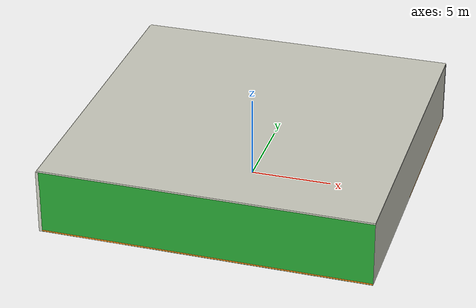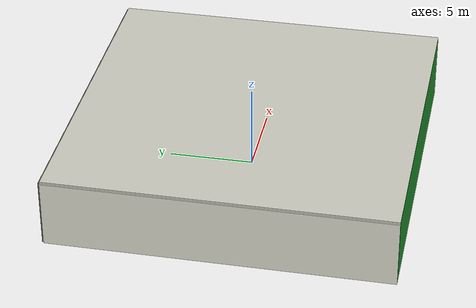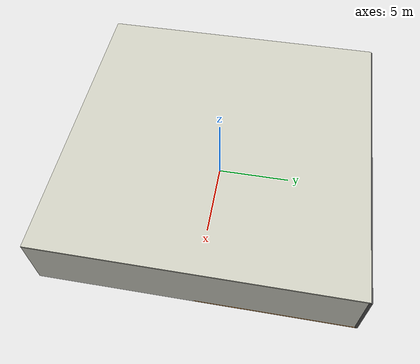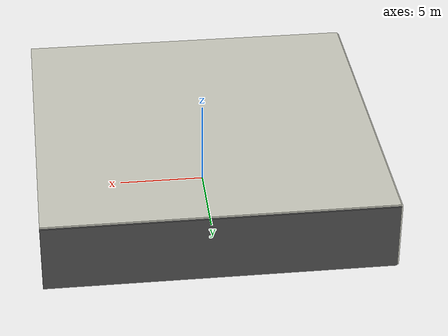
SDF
<sdf version="1.4">
 <world name="default">
  <physics type="ode">
   <max_step_size>0.001</max_step_size>
   <real_time_factor>1</real_time_factor>
   <real_time_update_rate>1000</real_time_update_rate>
   <gravity>0 0 -9.8</gravity>
  </physics>
  <scene><ambient>0.4 0.4 0.4 1</ambient><background>0.7 0.7 0.7 1</background><shadows>1</shadows></scene>
  <model name="Surrounding">
   <static>1</static>
   <link name="Ceiling">
    <collision name="Ceiling_Collision"><geometry><box><size>20 20 0.1</size></box></geometry></collision>
    <visual name="Ceiling_Visual">
     <geometry><box><size>20 20 0.1</size></box></geometry>
     <material>
      <script><uri>file://media/materials/scripts/gazebo.material</uri><name>Gazebo/PaintedWall</name></script>
     </material>
    </visual>
    <pose>0 0 4.05 0 0 0</pose>
   </link>
   <link name="Wall_South">
    <collision name="Wall_South_Collision">
     <geometry><box><size>20 0 4</size></box></geometry>
     <pose>0 0 2 0 -0 0</pose>
    </collision>
    <visual name="Wall_South_Visual">
     <pose>0 0 2 0 -0 0</pose>
     <geometry><box><size>20 0 4</size></box></geometry>
     <material>
      <script><uri>file://media/materials/scripts/gazebo.material</uri><name>Gazebo/Green</name></script>
     </material>
    </visual>
    <velocity_decay><linear>0</linear><angular>0</angular></velocity_decay>
    <pose>0 -10 0 0 -0 0</pose>
   </link>
   <link name="Wall_East">
    <collision name="Wall_21_Collision">
     <geometry><box><size>20 0 4</size></box></geometry>
     <pose>0 0 2 0 -0 0</pose>
    </collision>
    <visual name="Wall_21_Visual">
     <pose>0 0 2 0 -0 0</pose>
     <geometry><box><size>20 0 4</size></box></geometry>
     <material>
      <script><uri>file://media/materials/scripts/gazebo.material</uri><name>Gazebo/PaintedWall</name></script>
     </material>
    </visual>
    <velocity_decay><linear>0</linear><angular>0</angular></velocity_decay>
    <pose>10 0 0 0 -0 1.5708</pose>
   </link>
   <link name="Wall_North">
    <collision name="Wall_22_Collision">
     <geometry><box><size>20 0.2 4</size></box></geometry>
     <pose>0 0 2 0 -0 0</pose>
    </collision>
    <visual name="Wall_22_Visual">
     <pose>0 0 2 0 -0 0</pose>
     <geometry><box><size>20 0.2 4</size></box></geometry>
     <material>
      <script><uri>file://media/materials/scripts/gazebo.material</uri><name>Gazebo/DarkGrey</name></script>
     </material>
    </visual>
    <velocity_decay><linear>0</linear><angular>0</angular></velocity_decay>
    <pose>0 10 0 0 -0 0</pose>
   </link>
   <link name="Wall_West">
    <collision name="Wall_23_Collision">
     <geometry><box><size>20 0.2 4</size></box></geometry>
     <pose>0 0 2 0 -0 0</pose>
    </collision>
    <visual name="Wall_23_Visual">
     <pose>0 0 2 0 -0 0</pose>
     <geometry><box><size>20 0.2 4</size></box></geometry>
     <material>
      <script><uri>file://media/materials/scripts/gazebo.material</uri><name>Gazebo/PaintedWall</name></script>
     </material>
    </visual>
    <velocity_decay><linear>0</linear><angular>0</angular></velocity_decay>
    <pose>-10 0 0 0 0 -1.5708</pose>
   </link>
   <link name="Ground_link">
    <collision name="collision">
     <pose>0 0 .05 0 -0 0</pose>
     <geometry><box><size>20 20 0.1</size></box></geometry>
    </collision>
    <visual name="visual">
     <pose>0 0 .05 0 -0 0</pose>
     <geometry><box><size>20 20 0.1</size></box></geometry>
     <material>
      <script><uri>file://media/materials/scripts/gazebo.material</uri><name>Gazebo/Orange</name></script>
     </material>
    </visual>
   </link>
   <static>1</static>
  </model>
  <spherical_coordinates>
   <surface_model>EARTH_WGS84</surface_model>
   <latitude_deg>0</latitude_deg>
   <longitude_deg>0</longitude_deg>
   <elevation>0</elevation>
   <heading_deg>0</heading_deg>
  </spherical_coordinates>
  <light name="lightball_0" type="diffuse">
   <diffuse>0.8 0.8 0.8 1</diffuse>
   <specular>0.2 0.2 0.2 1</specular>
   <attenuation>
    <range>100</range>
    <constant>0.7</constant>
    <linear>0.01</linear>
    <quadratic>0.001</quadratic>
   </attenuation>
   <direction>-0.5 0.1 -0.9</direction>
   <pose>1.03495068548 6.71006462382 1.06151260005 0 0 0</pose>
  </light>
  <light name="lightball_1" type="diffuse">
   <diffuse>0.8 0.8 0.8 1</diffuse>
   <specular>0.2 0.2 0.2 1</specular>
   <attenuation>
    <range>100</range>
    <constant>0.7</constant>
    <linear>0.01</linear>
    <quadratic>0.001</quadratic>
   </attenuation>
   <direction>-0.5 0.1 -0.9</direction>
   <pose>-3.56223819895 -0.0867119657197 3.81817502814 0 0 0</pose>
  </light>
  <light name="lightball_2" type="diffuse">
   <diffuse>0.8 0.8 0.8 1</diffuse>
   <specular>0.2 0.2 0.2 1</specular>
   <attenuation>
    <range>100</range>
    <constant>0.7</constant>
    <linear>0.01</linear>
    <quadratic>0.001</quadratic>
   </attenuation>
   <direction>-0.5 0.1 -0.9</direction>
   <pose>-9.92051816021 8.84040100283 3.56009587548 0 0 0</pose>
  </light>
  <light name="lightball_3" type="diffuse">
   <diffuse>0.8 0.8 0.8 1</diffuse>
   <specular>0.2 0.2 0.2 1</specular>
   <attenuation>
    <range>100</range>
    <constant>0.7</constant>
    <linear>0.01</linear>
    <quadratic>0.001</quadratic>
   </attenuation>
   <direction>-0.5 0.1 -0.9</direction>
   <pose>1.31742855416 -1.82091400621 1.88611125593 0 0 0</pose>
  </light>
  <light name="lightball_4" type="diffuse">
   <diffuse>0.8 0.8 0.8 1</diffuse>
   <specular>0.2 0.2 0.2 1</specular>
   <attenuation>
    <range>100</range>
    <constant>0.7</constant>
    <linear>0.01</linear>
    <quadratic>0.001</quadratic>
   </attenuation>
   <direction>-0.5 0.1 -0.9</direction>
   <pose>-4.62417262965 9.18138590253 1.30083408859 0 0 0</pose>
  </light>
  <light name="lightball_5" type="diffuse">
   <diffuse>0.8 0.8 0.8 1</diffuse>
   <specular>0.2 0.2 0.2 1</specular>
   <attenuation>
    <range>100</range>
    <constant>0.7</constant>
    <linear>0.01</linear>
    <quadratic>0.001</quadratic>
   </attenuation>
   <direction>-0.5 0.1 -0.9</direction>
   <pose>3.16264070328 2.88851465849 0.899461526796 0 0 0</pose>
  </light>
  <light name="lightball_6" type="diffuse">
   <diffuse>0.8 0.8 0.8 1</diffuse>
   <specular>0.2 0.2 0.2 1</specular>
   <attenuation>
    <range>100</range>
    <constant>0.7</constant>
    <linear>0.01</linear>
    <quadratic>0.001</quadratic>
   </attenuation>
   <direction>-0.5 0.1 -0.9</direction>
   <pose>-8.30579022274 -0.264396960894 3.73290499104 0 0 0</pose>
  </light>
  <light name="lightball_7" type="diffuse">
   <diffuse>0.8 0.8 0.8 1</diffuse>
   <specular>0.2 0.2 0.2 1</specular>
   <attenuation>
    <range>100</range>
    <constant>0.7</constant>
    <linear>0.01</linear>
    <quadratic>0.001</quadratic>
   </attenuation>
   <direction>-0.5 0.1 -0.9</direction>
   <pose>1.78630615567 -9.03931865238 2.77804949029 0 0 0</pose>
  </light>
  <light name="lightball_8" type="diffuse">
   <diffuse>0.8 0.8 0.8 1</diffuse>
   <specular>0.2 0.2 0.2 1</specular>
   <attenuation>
    <range>100</range>
    <constant>0.7</constant>
    <linear>0.01</linear>
    <quadratic>0.001</quadratic>
   </attenuation>
   <direction>-0.5 0.1 -0.9</direction>
   <pose>6.47713272053 -4.88874968915 3.13667634266 0 0 0</pose>
  </light>
  <light name="lightball_9" type="diffuse">
   <diffuse>0.8 0.8 0.8 1</diffuse>
   <specular>0.2 0.2 0.2 1</specular>
   <attenuation>
    <range>100</range>
    <constant>0.7</constant>
    <linear>0.01</linear>
    <quadratic>0.001</quadratic>
   </attenuation>
   <direction>-0.5 0.1 -0.9</direction>
   <pose>-6.72512752507 -9.84466424211 1.99022894894 0 0 0</pose>
  </light>
  <light name="lightball_10" type="diffuse">
   <diffuse>0.8 0.8 0.8 1</diffuse>
   <specular>0.2 0.2 0.2 1</specular>
   <attenuation>
    <range>100</range>
    <constant>0.7</constant>
    <linear>0.01</linear>
    <quadratic>0.001</quadratic>
   </attenuation>
   <direction>-0.5 0.1 -0.9</direction>
   <pose>-1.01565082576 9.47661229616 1.98094090828 0 0 0</pose>
  </light>
  <light name="lightball_11" type="diffuse">
   <diffuse>0.8 0.8 0.8 1</diffuse>
   <specular>0.2 0.2 0.2 1</specular>
   <attenuation>
    <range>100</range>
    <constant>0.7</constant>
    <linear>0.01</linear>
    <quadratic>0.001</quadratic>
   </attenuation>
   <direction>-0.5 0.1 -0.9</direction>
   <pose>-4.64301987323 2.72332565177 1.71753034278 0 0 0</pose>
  </light>
  <light name="lightball_12" type="diffuse">
   <diffuse>0.8 0.8 0.8 1</diffuse>
   <specular>0.2 0.2 0.2 1</specular>
   <attenuation>
    <range>100</range>
    <constant>0.7</constant>
    <linear>0.01</linear>
    <quadratic>0.001</quadratic>
   </attenuation>
   <direction>-0.5 0.1 -0.9</direction>
   <pose>7.18649428676 4.57870951266 3.35927244044 0 0 0</pose>
  </light>
  <light name="lightball_13" type="diffuse">
   <diffuse>0.8 0.8 0.8 1</diffuse>
   <specular>0.2 0.2 0.2 1</specular>
   <attenuation>
    <range>100</range>
    <constant>0.7</constant>
    <linear>0.01</linear>
    <quadratic>0.001</quadratic>
   </attenuation>
   <direction>-0.5 0.1 -0.9</direction>
   <pose>8.51631121716 -2.66742199749 2.57709007909 0 0 0</pose>
  </light>
  <include>
   <uri>model://robocup_3Dsim_goal</uri>
   <pose>-4.88234647029 -7.41137603962 0 0 0 1.28082152269</pose>
  </include>
  <include><uri>model://table</uri><pose>-0.879951359107 -4.23596254752 0 0 0 0.0824823409426</pose></include>
  <include>
   <uri>model://construction_cone</uri>
   <pose>3.79955162928 4.36040262479 0 0 0 1.22278671797</pose>
  </include>
  <include>
   <uri>model://construction_cone</uri>
   <pose>6.92762647187 -2.29360494142 0 0 0 2.52434187948</pose>
  </include>
 </world>
</sdf>

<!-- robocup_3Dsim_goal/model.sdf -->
<sdf version="1.5">
  <model name="robocup_3d_goal">
    <static>true</static>
    <link name="left_post">
      <pose>0 1.05 0.45 0 0 0</pose>
      <collision name="collision">
        <geometry>
          <cylinder>
            <radius>0.05</radius>
            <length>0.9</length>
          </cylinder>
        </geometry>
      </collision>
      <visual name="visual">
        <geometry>
          <cylinder>
            <radius>0.05</radius>
            <length>0.9</length>
          </cylinder>
        </geometry>
        <material>
          <script>
            <uri>file://media/materials/scripts/gazebo.material</uri>
            <name>Gazebo/ZincYellow</name>
          </script>
        </material>
      </visual>
    </link>
    <link name="left_support_horiz_lower">
      <pose>0.30 1.05 0.01 0 0 0</pose>
      <collision name="collision">
        <geometry>
          <box>
            <size>0.50 0.02 0.02</size>
          </box>
        </geometry>
      </collision>
      <visual name="visual">
        <geometry>
          <box>
            <size>0.50 0.02 0.02</size>
          </box>
        </geometry>
        <material>
          <script>
            <uri>file://media/materials/scripts/gazebo.material</uri>
            <name>Gazebo/White</name>
          </script>
        </material>
      </visual>
    </link>
    <link name="left_support_horiz_upper">
      <pose>0.30 1.05 0.79 0 0 0</pose>
      <collision name="collision">
        <geometry>
          <box>
            <size>0.50 0.02 0.02</size>
          </box>
        </geometry>
      </collision>
      <visual name="visual">
        <geometry>
          <box>
            <size>0.50 0.02 0.02</size>
          </box>
        </geometry>
        <material>
          <script>
            <uri>file://media/materials/scripts/gazebo.material</uri>
            <name>Gazebo/White</name>
          </script>
        </material>
      </visual>
    </link>
    <link name="left_support_vertical">
      <pose>0.56 1.05 0.4 0 1.5708 0</pose>
      <collision name="collision">
        <geometry>
          <box>
            <size>0.80 0.02 0.02</size>
          </box>
        </geometry>
      </collision>
      <visual name="visual">
        <geometry>
          <box>
            <size>0.80 0.02 0.02</size>
          </box>
        </geometry>
        <material>
          <script>
            <uri>file://media/materials/scripts/gazebo.material</uri>
            <name>Gazebo/White</name>
          </script>
        </material>
      </visual>
    </link>
    <link name="right_support_horiz_lower">
      <pose>0.30 -1.05 0.01 0 0 0</pose>
      <collision name="collision">
        <geometry>
          <box>
            <size>0.50 0.02 0.02</size>
          </box>
        </geometry>
      </collision>
      <visual name="visual">
        <geometry>
          <box>
            <size>0.50 0.02 0.02</size>
          </box>
        </geometry>
        <material>
          <script>
            <uri>file://media/materials/scripts/gazebo.material</uri>
            <name>Gazebo/White</name>
          </script>
        </material>
      </visual>
    </link>
    <link name="right_support_horiz_upper">
      <pose>0.30 -1.05 0.79 0 0 0</pose>
      <collision name="collision">
        <geometry>
          <box>
            <size>0.50 0.02 0.02</size>
          </box>
        </geometry>
      </collision>
      <visual name="visual">
        <geometry>
          <box>
            <size>0.50 0.02 0.02</size>
          </box>
        </geometry>
        <material>
          <script>
            <uri>file://media/materials/scripts/gazebo.material</uri>
            <name>Gazebo/White</name>
          </script>
        </material>
      </visual>
    </link>
    <link name="right_support_vertical">
      <pose>0.56 -1.05 0.4 0 1.5708 0</pose>
      <collision name="collision">
        <geometry>
          <box>
            <size>0.80 0.02 0.02</size>
          </box>
        </geometry>
      </collision>
      <visual name="visual">
        <geometry>
          <box>
            <size>0.80 0.02 0.02</size>
          </box>
        </geometry>
        <material>
          <script>
            <uri>file://media/materials/scripts/gazebo.material</uri>
            <name>Gazebo/White</name>
          </script>
        </material>
      </visual>
    </link>
    <link name="center_support_horiz_lower">
      <pose>0.56 0 0.01 0 1.5708 0</pose>
      <collision name="collision">
        <geometry>
          <box>
            <size>0.02 2.08 0.02</size>
          </box>
        </geometry>
      </collision>
      <visual name="visual">
        <geometry>
          <box>
            <size>0.02 2.08 0.02</size>
          </box>
        </geometry>
        <material>
          <script>
            <uri>file://media/materials/scripts/gazebo.material</uri>
            <name>Gazebo/White</name>
          </script>
        </material>
      </visual>
    </link>
    <link name="center_support_horiz_upper">
      <pose>0.56 0 0.79 0 1.5708 0</pose>
      <collision name="collision">
        <geometry>
          <box>
            <size>0.02 2.08 0.02</size>
          </box>
        </geometry>
      </collision>
      <visual name="visual">
        <geometry>
          <box>
            <size>0.02 2.08 0.02</size>
          </box>
        </geometry>
        <material>
          <script>
            <uri>file://media/materials/scripts/gazebo.material</uri>
            <name>Gazebo/White</name>
          </script>
        </material>
      </visual>
    </link>
    <link name="right_post">
      <pose>0 -1.05 0.45 0 0 0</pose>
      <collision name="collision">
        <geometry>
          <cylinder>
            <radius>0.05</radius>
            <length>0.9</length>
          </cylinder>
        </geometry>
      </collision>
      <visual name="visual">
        <geometry>
          <cylinder>
            <radius>0.05</radius>
            <length>0.9</length>
          </cylinder>
        </geometry>
        <material>
          <script>
            <uri>file://media/materials/scripts/gazebo.material</uri>
            <name>Gazebo/ZincYellow</name>
          </script>
        </material>
      </visual>
    </link>
    <link name="crossbar">
      <pose>0 0 0.85 1.57 1.57 0</pose>
      <collision name="collision">
        <geometry>
          <cylinder>
            <radius>0.05</radius>
            <length>2.0</length>
          </cylinder>
        </geometry>
      </collision>
      <visual name="visual">
        <geometry>
          <cylinder>
            <radius>0.05</radius>
            <length>2.0</length>
          </cylinder>
        </geometry>
        <material>
          <script>
            <uri>file://media/materials/scripts/gazebo.material</uri>
            <name>Gazebo/ZincYellow</name>
          </script>
        </material>
      </visual>
    </link>
    <link name="center_net">
      <pose>0.56 0 0.40 0 0 0</pose>
      <collision name="collision">
        <geometry>
          <box>
            <size>0.01 2.1 0.80</size>
          </box>
        </geometry>
      </collision>
      <visual name="visual">
        <geometry>
          <box>
            <size>0.01 2.1 0.80</size>
          </box>
        </geometry>
        <material>
          <script>
            <uri>model://../model_source/models/robocup09_spl_field/materials/scripts/</uri>
            <uri>model://../model_source/models/robocup09_spl_field/materials/textures/</uri>
            <name>RoboCup/Net</name>
          </script>
        </material>
      </visual>
    </link>
    <link name="left_net">
      <pose>0.30 1.05 0.40 0 0 0</pose>
      <collision name="collision">
        <geometry>
          <box>
            <size>0.50 0.01 0.76</size>
          </box>
        </geometry>
      </collision>
      <visual name="visual">
        <geometry>
          <box>
            <size>0.50 0.01 0.76</size>
          </box>
        </geometry>
        <material>
          <script>
            <uri>model://../model_source/models/robocup09_spl_field/materials/scripts/</uri>
            <uri>model://../model_source/models/robocup09_spl_field/materials/textures/</uri>
            <name>RoboCup/Net</name>
          </script>
        </material>
      </visual>
    </link>
    <link name="right_net">
      <pose>0.30 -1.05 0.40 0 0 0</pose>
      <collision name="collision">
        <geometry>
          <box>
            <size>0.50 0.01 0.76</size>
          </box>
        </geometry>
      </collision>
      <visual name="visual">
        <geometry>
          <box>
            <size>0.50 0.01 0.76</size>
          </box>
        </geometry>
        <material>
          <script>
            <uri>model://../model_source/models/robocup09_spl_field/materials/scripts/</uri>
            <uri>model://../model_source/models/robocup09_spl_field/materials/textures/</uri>
            <name>RoboCup/Net</name>
          </script>
        </material>
      </visual>
    </link>
  </model>
</sdf>

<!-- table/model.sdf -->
<sdf version="1.5">
  <model name="table">
    <static>true</static>
    <link name="link">
      <collision name="surface">
        <pose>0 0 1.0 0 0 0</pose>
        <geometry>
          <box>
            <size>1.5 0.8 0.03</size>
          </box>
        </geometry>
        <surface>
          <friction>
            <ode>
              <mu>0.6</mu>
              <mu2>0.6</mu2>
            </ode>
          </friction>
        </surface>
      </collision>
      <visual name="visual1">
        <pose>0 0 1.0 0 0 0</pose>
        <geometry>
          <box>
            <size>1.5 0.8 0.03</size>
          </box>
        </geometry>
        <material>
          <script>
            <uri>model://media/materials/scripts/gazebo.material</uri>
            <name>Gazebo/Wood</name>
          </script>
        </material>
      </visual>
      <collision name="front_left_leg">
        <pose>0.68 0.38 0.5 0 0 0</pose>
        <geometry>
          <cylinder>
            <radius>0.02</radius>
            <length>1.0</length>
          </cylinder>
        </geometry>
      </collision>
      <visual name="front_left_leg">
        <pose>0.68 0.38 0.5 0 0 0</pose>
        <geometry>
          <cylinder>
            <radius>0.02</radius>
            <length>1.0</length>
          </cylinder>
        </geometry>
        <material>
          <script>
            <uri>model://media/materials/scripts/gazebo.material</uri>
            <name>Gazebo/Grey</name>
          </script>
        </material>
      </visual>
      <collision name="front_right_leg">
        <pose>0.68 -0.38 0.5 0 0 0</pose>
        <geometry>
          <cylinder>
            <radius>0.02</radius>
            <length>1.0</length>
          </cylinder>
        </geometry>
      </collision>
      <visual name="front_right_leg">
        <pose>0.68 -0.38 0.5 0 0 0</pose>
        <geometry>
          <cylinder>
            <radius>0.02</radius>
            <length>1.0</length>
          </cylinder>
        </geometry>
        <material>
          <script>
            <uri>model://media/materials/scripts/gazebo.material</uri>
            <name>Gazebo/Grey</name>
          </script>
        </material>
      </visual>
      <collision name="back_right_leg">
        <pose>-0.68 -0.38 0.5 0 0 0</pose>
        <geometry>
          <cylinder>
            <radius>0.02</radius>
            <length>1.0</length>
          </cylinder>
        </geometry>
      </collision>
      <visual name="back_right_leg">
        <pose>-0.68 -0.38 0.5 0 0 0</pose>
        <geometry>
          <cylinder>
            <radius>0.02</radius>
            <length>1.0</length>
          </cylinder>
        </geometry>
        <material>
          <script>
            <uri>model://media/materials/scripts/gazebo.material</uri>
            <name>Gazebo/Grey</name>
          </script>
        </material>
      </visual>
      <collision name="back_left_leg">
        <pose>-0.68 0.38 0.5 0 0 0</pose>
        <geometry>
          <cylinder>
            <radius>0.02</radius>
            <length>1.0</length>
          </cylinder>
        </geometry>
      </collision>
      <visual name="back_left_leg">
        <pose>-0.68 0.38 0.5 0 0 0</pose>
        <geometry>
          <cylinder>
            <radius>0.02</radius>
            <length>1.0</length>
          </cylinder>
        </geometry>
        <material>
          <script>
            <uri>model://media/materials/scripts/gazebo.material</uri>
            <name>Gazebo/Grey</name>
          </script>
        </material>
      </visual>
    </link>
  </model>
</sdf>

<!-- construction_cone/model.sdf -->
<sdf version="1.5">
  <model name="Construction Cone">
    <link name="link">
      <collision name="collision">
        <geometry>
          <mesh>
            <scale>10 10 10</scale>
            <uri>file://isr-testbed/construction_cone/meshes/construction_cone.dae</uri>
          </mesh>
        </geometry>
      </collision>
      <visual name="visual">
        <geometry>
          <mesh>
            <scale>10 10 10</scale>
            <uri>file://isr-testbed/construction_cone/meshes/construction_cone.dae</uri>
          </mesh>
        </geometry>
      </visual>
    </link>
  </model>
</sdf>
